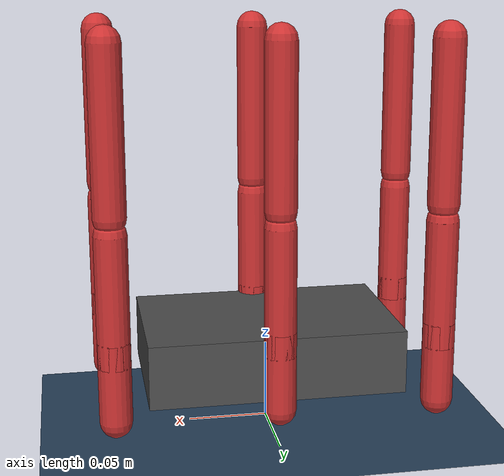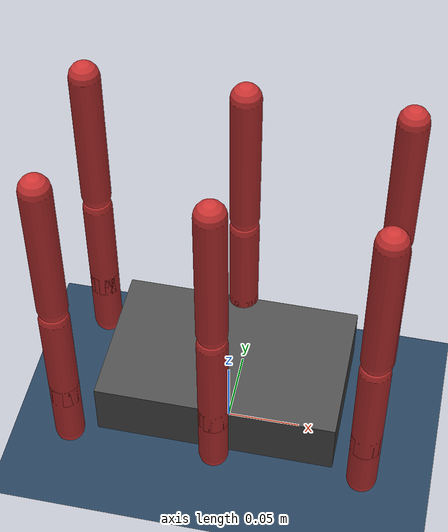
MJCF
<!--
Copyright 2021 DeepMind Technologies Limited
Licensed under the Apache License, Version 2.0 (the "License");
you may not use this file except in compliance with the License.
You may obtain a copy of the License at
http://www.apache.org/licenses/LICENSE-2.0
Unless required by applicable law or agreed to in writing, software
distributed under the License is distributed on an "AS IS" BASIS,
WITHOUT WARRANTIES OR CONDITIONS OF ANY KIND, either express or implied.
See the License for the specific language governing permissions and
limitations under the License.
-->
<mujoco model="hexapod">
    <compiler autolimits="true"/>

    <asset>
        <texture name="grid" type="2d" builtin="checker"
                 width="512" height="512"
                 rgb1=".1 .2 .3" rgb2=".2 .3 .4"/>
        <material name="grid" texture="grid"
                  texrepeat="1 1" texuniform="true" reflectance=".2"/>

        <material name="body_mat" rgba="0.3 0.3 0.3 1"/>
        <material name="leg_mat" rgba="0.8 0.2 0.2 1"/>
    </asset>

    <default>
        <joint damping="0.03"/>
    </default>

    <worldbody>
        <!-- Ground plane -->
        <geom type="plane" size="3 3 0.01" material="grid"/>

        <!-- Lighting -->
        <light name="sun" pos="0 0 2" mode="trackcom"
               diffuse="0.8 0.8 0.8"/>

        <!-- Hexapod body -->
        <body name="torso" pos="0 0 0.05">
            <freejoint/>
            <geom type="box" size="0.08 0.05 0.02"
                  material="body_mat"/>

            <!-- LEFT FRONT -->
            <body name="leg0_base" pos="0.1 0.05 0">
                <joint name="leg0_coxa_j" type="hinge" axis="0 0 1" range="0 90"/>
                <geom name="leg0_coxa" type="capsule" size="0.01 0.025" pos="0 0 0" material="leg_mat"/>

                <body name="leg0_femur" pos="0 0 0">
                    <joint name="leg0_femur_j" type="hinge" axis="0 1 0" range="30 75"/>
                    <geom name="leg0_femur_g" type="capsule" size="0.01 0.04" pos="0 0 0.05" material="leg_mat"/>

                    <body name="leg0_tibia" pos="0 0 0.1">
                        <joint name="leg0_tibia_j" type="hinge" axis="0 1 0" range="15 105"/>
                        <geom name="leg0_tibia_g" type="capsule" size="0.01 0.05" pos="0 0 0.05" material="leg_mat"/>
                    </body>
                </body>
            </body>
            <!-- RIGHT FRONT -->
            <body name="leg1_base" pos="0.1 -0.05 0">
                <joint name="leg1_coxa_j" type="hinge" axis="0 0 1" range="-90 0"/>
                <geom name="leg1_coxa" type="capsule" size="0.01 0.025" pos="0 0 0" material="leg_mat"/>

                <body name="leg1_femur" pos="0 0 0">
                    <joint name="leg1_femur_j" type="hinge" axis="0 1 0" range="30 75"/>
                    <geom name="leg1_femur_g" type="capsule" size="0.01 0.04" pos="0 0 0.05" material="leg_mat"/>

                    <body name="leg1_tibia" pos="0 0 0.1">
                        <joint name="leg1_tibia_j" type="hinge" axis="0 1 0" range="15 105"/>
                        <geom name="leg1_tibia_g" type="capsule" size="0.01 0.05" pos="0 0 0.05" material="leg_mat"/>
                    </body>
                </body>
            </body>

            <!-- LEFT MID -->
            <body name="leg2_base" pos="0 0.05 0">
                <joint name="leg2_coxa_j" type="hinge" axis="0 0 1" range="45 135"/>
                <geom name="leg2_coxa" type="capsule" size="0.01 0.025" pos="0 0 0" material="leg_mat"/>

                <body name="leg2_femur" pos="0 0 0">
                    <joint name="leg2_femur_j" type="hinge" axis="0 1 0" range="30 75"/>
                    <geom name="leg2_femur_g" type="capsule" size="0.01 0.04" pos="0 0 0.05" material="leg_mat"/>

                    <body name="leg2_tibia" pos="0 0 0.1">
                        <joint name="leg2_tibia_j" type="hinge" axis="0 1 0" range="15 105"/>
                        <geom name="leg2_tibia_g" type="capsule" size="0.01 0.05" pos="0 0 0.05" material="leg_mat"/>
                    </body>
                </body>
            </body>

            <!-- RIGHT MID -->
            <body name="leg3_base" pos="0 -0.05 0">
                <joint name="leg3_coxa_j" type="hinge" axis="0 0 1" range="225 315"/>
                <geom name="leg3_coxa" type="capsule" size="0.01 0.025" pos="0 0 0" material="leg_mat"/>

                <body name="leg3_femur" pos="0 0 0">
                    <joint name="leg3_femur_j" type="hinge" axis="0 1 0" range="30 75"/>
                    <geom name="leg3_femur_g" type="capsule" size="0.01 0.04" pos="0 0 0.05" material="leg_mat"/>

                    <body name="leg3_tibia" pos="0 0 0.1">
                        <joint name="leg3_tibia_j" type="hinge" axis="0 1 0" range="15 105"/>
                        <geom name="leg3_tibia_g" type="capsule" size="0.01 0.05" pos="0 0 0.05" material="leg_mat"/>
                    </body>
                </body>
            </body>

            <!-- LEFT REAR -->
            <body name="leg4_base" pos="-0.1 0.05 0">
                <joint name="leg4_coxa_j" type="hinge" axis="0 0 1" range="90 180"/>
                <geom name="leg4_coxa" type="capsule" size="0.01 0.025" pos="0 0 0" material="leg_mat"/>

                <body name="leg4_femur" pos="0 0 0">
                    <joint name="leg4_femur_j" type="hinge" axis="0 1 0" range="30 75"/>
                    <geom name="leg4_femur_g" type="capsule" size="0.01 0.04" pos="0 0 0.05" material="leg_mat"/>

                    <body name="leg4_tibia" pos="0 0 0.1">
                        <joint name="leg4_tibia_j" type="hinge" axis="0 1 0" range="15 105"/>
                        <geom name="leg4_tibia_g" type="capsule" size="0.01 0.05" pos="0 0 0.05" material="leg_mat"/>
                    </body>
                </body>
            </body>

            <!-- RIGHT REAR -->
            <body name="leg5_base" pos="-0.1 -0.05 0">
                <joint name="leg5_coxa_j" type="hinge" axis="0 0 1" range="180 270"/>
                <geom name="leg5_coxa" type="capsule" size="0.01 0.025" pos="0 0 0" material="leg_mat"/>

                <body name="leg5_femur" pos="0 0 0">
                    <joint name="leg5_femur_j" type="hinge" axis="0 1 0" range="30 75"/>
                    <geom name="leg5_femur_g" type="capsule" size="0.01 0.04" pos="0 0 0.05" material="leg_mat"/>

                    <body name="leg5_tibia" pos="0 0 0.1">
                        <joint name="leg5_tibia_j" type="hinge" axis="0 1 0" range="15 105"/>
                        <geom name="leg5_tibia_g" type="capsule" size="0.01 0.05" pos="0 0 0.05" material="leg_mat"/>
                    </body>
               </body>
            </body>

        </body>
    </worldbody>
      <!-- =====================================
       Actuators : Position control joints
       Each joint gets its own position actuator
       ===================================== -->
<actuator>

    <!-- Coxa joints -->
    <position name="act_leg0_coxa" joint="leg0_coxa_j" kp="2" ctrlrange="0 1.57"/>
    <position name="act_leg1_coxa" joint="leg1_coxa_j" kp="2" ctrlrange="-1.57 0"/>
    <position name="act_leg2_coxa" joint="leg2_coxa_j" kp="2" ctrlrange="0.79 2.36"/>
    <position name="act_leg3_coxa" joint="leg3_coxa_j" kp="2" ctrlrange="-2.36 -0.79"/>
    <position name="act_leg4_coxa" joint="leg4_coxa_j" kp="2" ctrlrange="1.57 3.14"/>
    <position name="act_leg5_coxa" joint="leg5_coxa_j" kp="2" ctrlrange="-3.14 -1.57"/>

    <!-- Femur joints -->
    <position name="act_leg0_femur" joint="leg0_femur_j" kp="5" ctrlrange="0.52 1.31"/>
    <position name="act_leg1_femur" joint="leg1_femur_j" kp="5" ctrlrange="0.52 1.31"/>
    <position name="act_leg2_femur" joint="leg2_femur_j" kp="5" ctrlrange="0.52 1.31"/>
    <position name="act_leg3_femur" joint="leg3_femur_j" kp="5" ctrlrange="0.52 1.31"/>
    <position name="act_leg4_femur" joint="leg4_femur_j" kp="5" ctrlrange="0.52 1.31"/>
    <position name="act_leg5_femur" joint="leg5_femur_j" kp="5" ctrlrange="0.52 1.31"/>

    <!-- Tibia joints -->
    <position name="act_leg0_tibia" joint="leg0_tibia_j" kp="5" ctrlrange="0.26 1.83"/>
    <position name="act_leg1_tibia" joint="leg1_tibia_j" kp="5" ctrlrange="0.26 1.83"/>
    <position name="act_leg2_tibia" joint="leg2_tibia_j" kp="5" ctrlrange="0.26 1.83"/>
    <position name="act_leg3_tibia" joint="leg3_tibia_j" kp="5" ctrlrange="0.26 1.83"/>
    <position name="act_leg4_tibia" joint="leg4_tibia_j" kp="5" ctrlrange="0.26 1.83"/>
    <position name="act_leg5_tibia" joint="leg5_tibia_j" kp="5" ctrlrange="0.26 1.83"/>

</actuator>

</mujoco>
